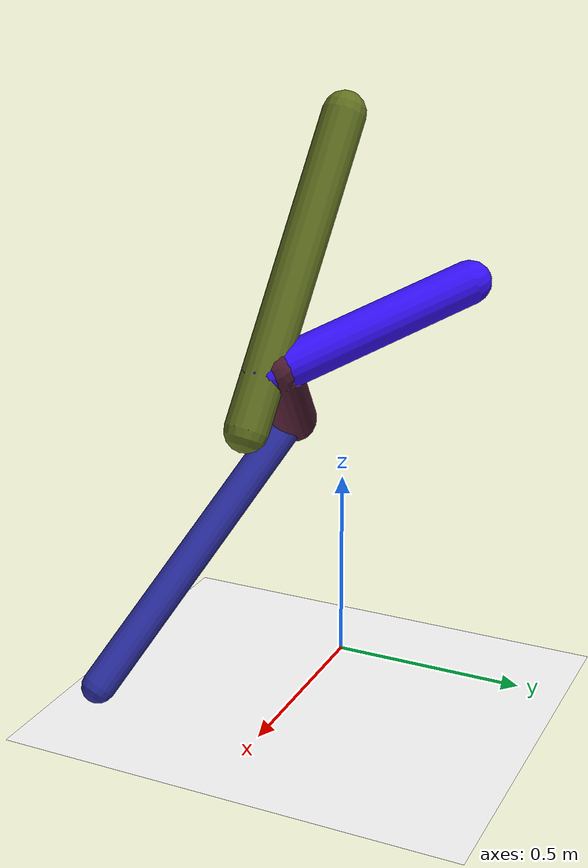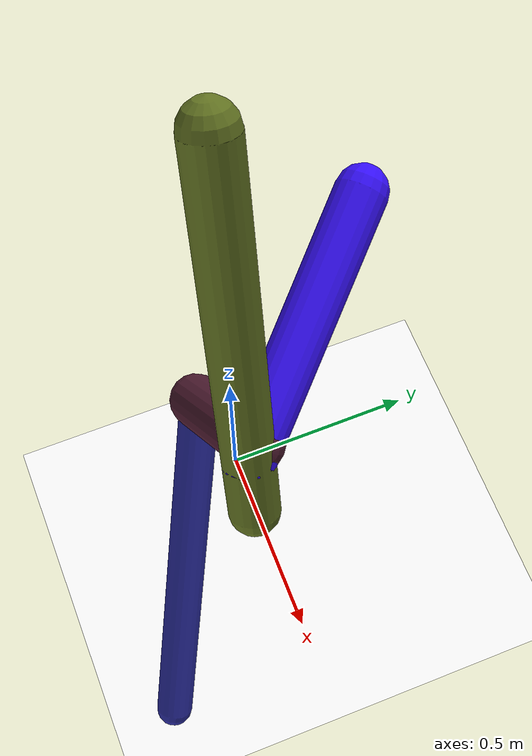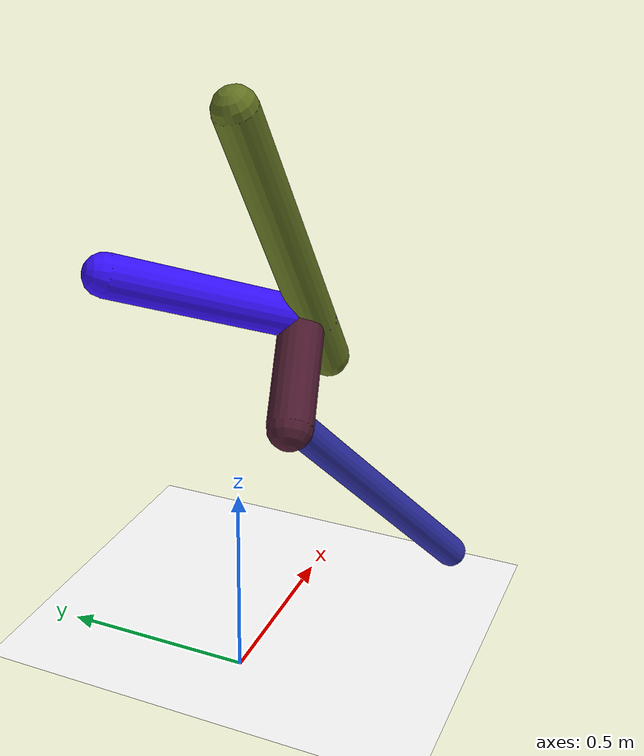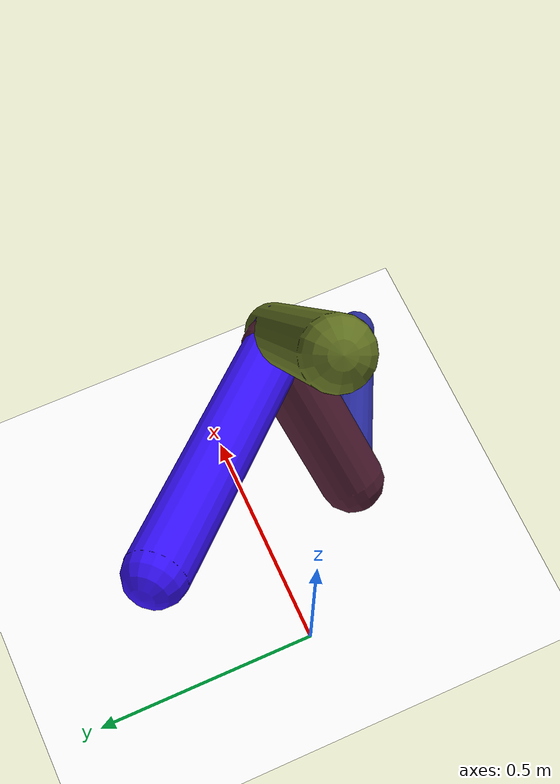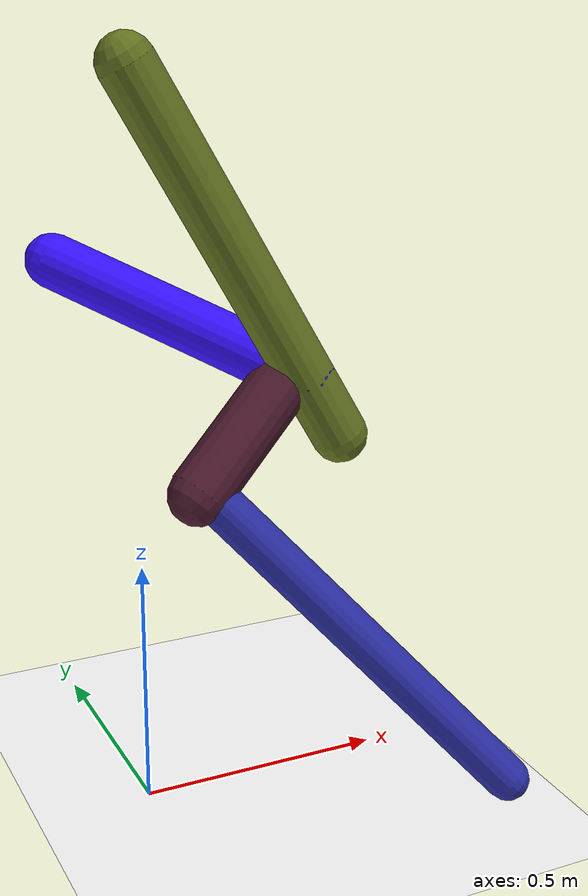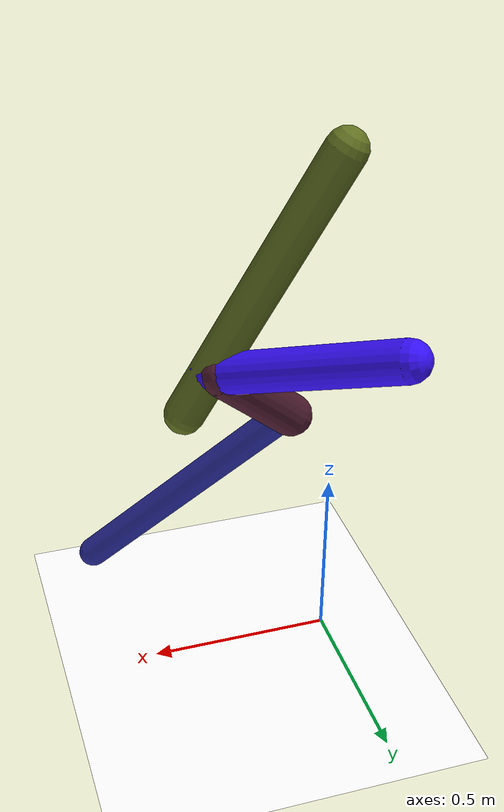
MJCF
<mujoco model="morphology">
  <option timestep="0.01"/>
  <default>
    <default class="/"/>
    <default class="0/"/>
    <default class="0/1/"/>
    <default class="0/1/2/"/>
    <default class="0/1/2/3/"/>
  </default>
  <asset>
    <texture name="texplane" type="2d" builtin="checker" rgb1="0.10000000000000001 0.20000000000000001 0.29999999999999999" rgb2="0.20000000000000001 0.29999999999999999 0.40000000000000002" width="300" height="300"/>
    <material name="MatPlane" class="/" texture="texplane" texrepeat="20 20" specular="1" shininess="1" reflectance="0.5"/>
  </asset>
  <worldbody>
    <light name="//unnamed_light_0" class="/" directional="true" pos="0 0 1.5" dir="0 0 -1.3" cutoff="100" exponent="1" diffuse="1 1 1" specular="0.10000000000000001 0.10000000000000001 0.10000000000000001"/>
    <geom name="ground" class="/" type="plane" size="15 15 0.5" material="MatPlane" rgba="1 1 1 1"/>
    <site name="body" class="/" size="9.9999999999999995e-07 9.9999999999999995e-07 9.9999999999999995e-07" pos="0 0 1.4410753011703492"/>
    <body pos="0 0 1.4410753011703492" name="0/">
      <freejoint name="0/"/>
      <geom name="0/geom" class="0/" type="capsule" contype="1" conaffinity="1" condim="3" size="0.054595993629460562" rgba="0.38818155562486079 0.45291219749374456 0.13076569958014861 1" friction="0.59999999999999998 0.10000000000000001 0.10000000000000001" fromto="0 0 0 0.37988380172606684 -0.080791315576699496 -0.69878355391093327"/>
      <site name="0/end0" class="0/" size="0.0050000000000000001" pos="0.37988380172606684 -0.080791315576699496 -0.69878355391093327"/>
      <site name="0/attach1" class="0/" size="9.9999999999999995e-07 9.9999999999999995e-07 9.9999999999999995e-07" pos="0.3174515824798041 -0.067513620912277597 -0.58394157369165278"/>
      <body pos="0.3174515824798041 -0.067513620912277597 -0.58394157369165278" name="0/1/">
        <joint name="0/1/joint/" class="0/" type="hinge" axis="0 0 1" limited="true" range="-49.914592448607436 49.914592448607436"/>
        <geom name="0/1/geom" class="0/1/" type="capsule" contype="1" conaffinity="1" condim="3" size="0.054621175102137355" rgba="0.21260407189656105 0.059674658650592183 0.98939144996074602 1" friction="0.59999999999999998 0.10000000000000001 0.10000000000000001" fromto="0 0 0 -0.37323277320589432 0.37986152697820397 0.18641881445680486"/>
        <site name="0/1/end1" class="0/1/" size="0.0050000000000000001" pos="-0.37323277320589432 0.37986152697820397 0.18641881445680486"/>
        <site name="0/1/attach2" class="0/1/" size="9.9999999999999995e-07 9.9999999999999995e-07 9.9999999999999995e-07" pos="-0.025259826088390558 0.025708450055769046 0.012616541662018421"/>
        <body pos="-0.025259826088390558 0.025708450055769046 0.012616541662018421" name="0/1/2/">
          <joint name="0/1/2/joint/" class="0/1/" type="hinge" axis="-2.7755575615628914e-17 -0.44056147315425725 0.89772244506425825" limited="true" range="-45.92360462736255 45.92360462736255"/>
          <geom name="0/1/2/geom" class="0/1/2/" type="capsule" contype="1" conaffinity="1" condim="3" size="0.059102175632771439" rgba="0.30392772605564655 0.1080046486393339 0.18907534101147072 1" friction="0.59999999999999998 0.10000000000000001 0.10000000000000001" fromto="0 0 0 -0.21260981812243496 -0.05912294417273678 -0.19680231806892778"/>
          <site name="0/1/2/end2" class="0/1/2/" size="0.0050000000000000001" pos="-0.21260981812243496 -0.05912294417273678 -0.19680231806892778"/>
          <site name="0/1/2/attach3" class="0/1/2/" size="9.9999999999999995e-07 9.9999999999999995e-07 9.9999999999999995e-07" pos="-0.20123397914796548 -0.055959529150114026 -0.18627227058605378"/>
          <body pos="-0.20123397914796548 -0.055959529150114026 -0.18627227058605378" name="0/1/2/3/">
            <joint name="0/1/2/3/joint/" class="0/1/2/" type="hinge" axis="0.6949669835985498 -0.20687911820223129 -0.68863772925958655" limited="true" range="-46.183877347051045 46.183877347051045"/>
            <geom name="0/1/2/3/geom" class="0/1/2/3/" type="capsule" contype="1" conaffinity="1" condim="3" size="0.043159683734529074" rgba="0.16930525738762514 0.17815133815356654 0.6411530838806635 1" friction="0.59999999999999998 0.10000000000000001 0.10000000000000001" fromto="0 0 0 0.50754138480189903 -0.2899188480399788 -0.58347800738357236"/>
            <site name="0/1/2/3/end3" class="0/1/2/3/" size="0.0050000000000000001" pos="0.50754138480189903 -0.2899188480399788 -0.58347800738357236"/>
          </body>
        </body>
      </body>
      <camera name="0/iso" class="0/" mode="trackcom" pos="-2.2999999999999998 -2.2999999999999998 1" xyaxes="0.45000000000000001 -0.45000000000000001 0 0.29999999999999999 0.14999999999999999 0.93999999999999995"/>
    </body>
  </worldbody>
  <actuator>
    <motor name="0/1/motor" class="0/1/" ctrllimited="true" ctrlrange="-1 1" gear="50" joint="0/1/joint/"/>
    <motor name="0/1/2/motor" class="0/1/2/" ctrllimited="true" ctrlrange="-1 1" gear="68" joint="0/1/2/joint/"/>
    <motor name="0/1/2/3/motor" class="0/1/2/3/" ctrllimited="true" ctrlrange="-1 1" gear="92" joint="0/1/2/3/joint/"/>
  </actuator>
  <sensor>
    <subtreelinvel name="velocity" body="0/"/>
  </sensor>
</mujoco>
